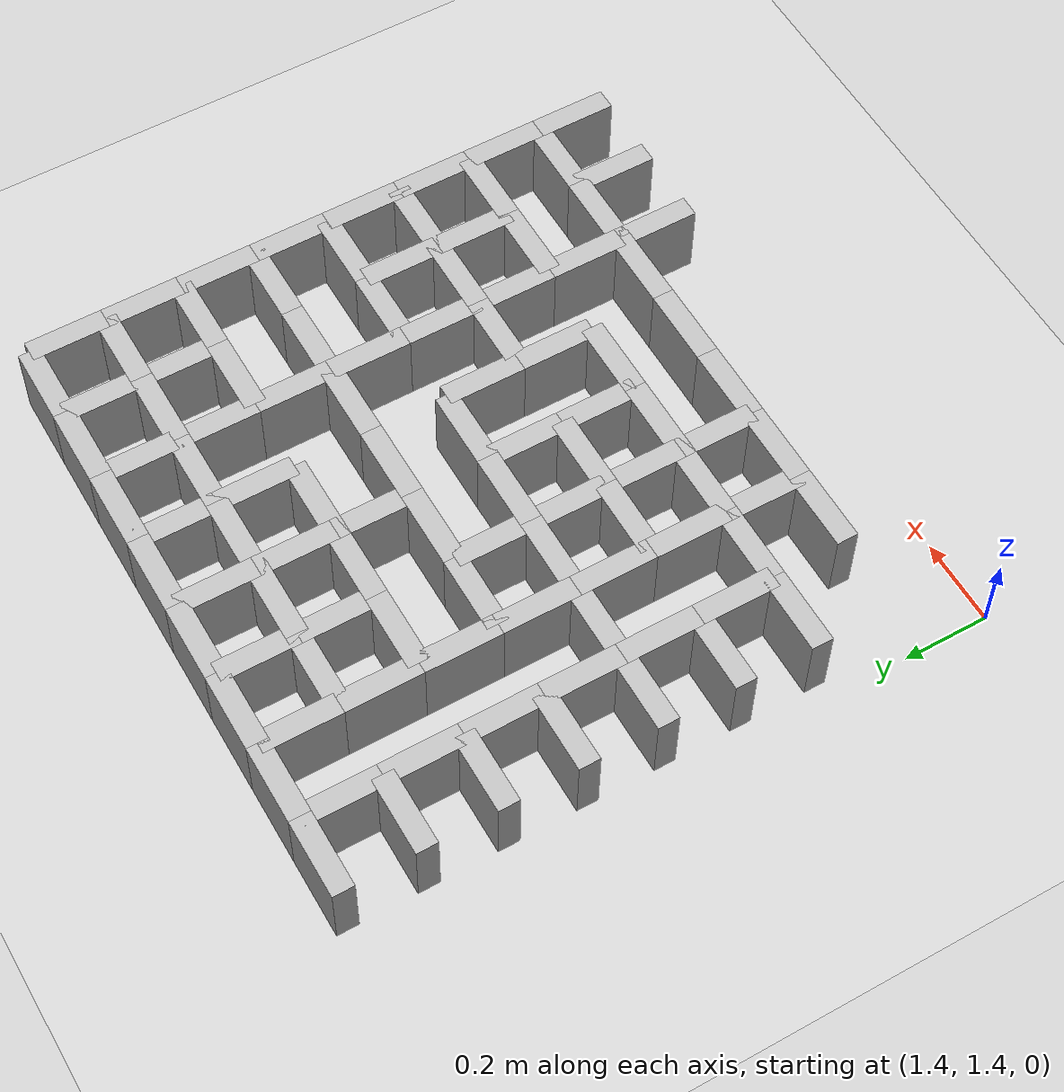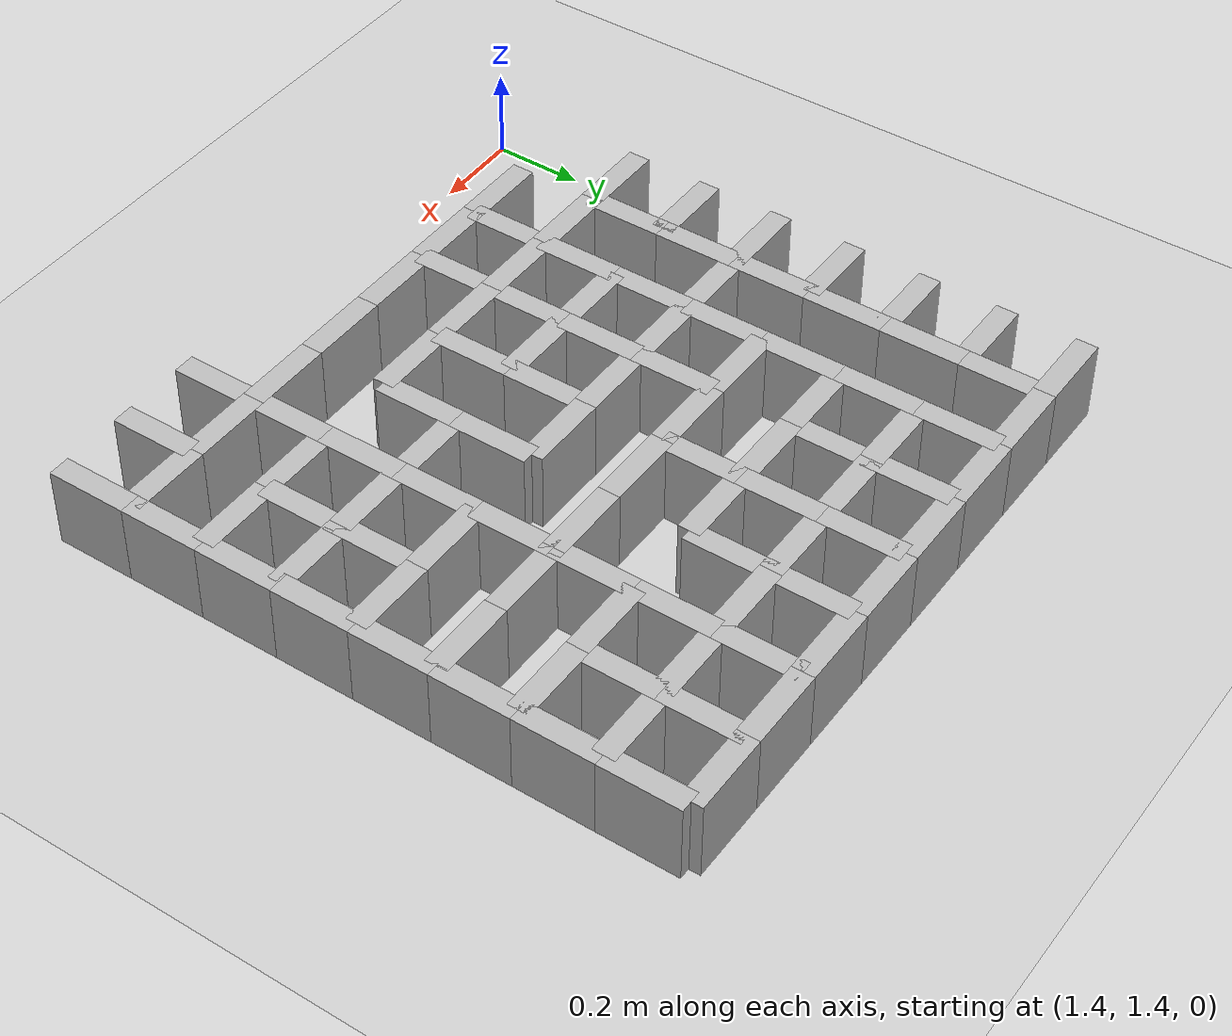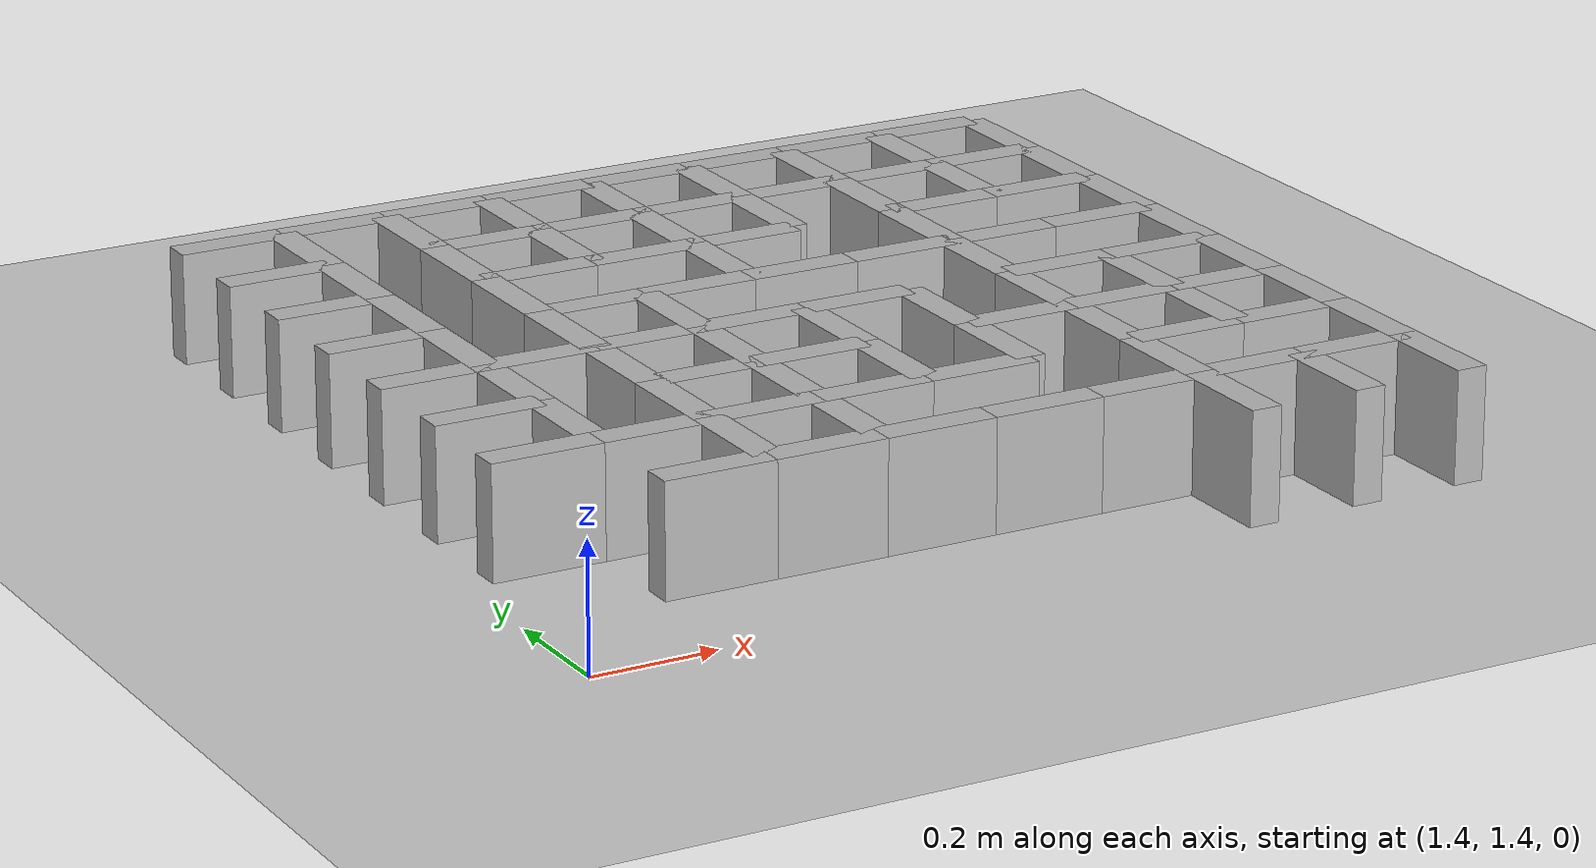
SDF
<sdf version="1.6">
 <world name="default">
  <model name="ground_plane">
   <static>1</static>
   <link name="link">
    <collision name="collision">
     <geometry><plane><normal>0 0 1</normal><size>100 100</size></plane></geometry>
     <surface><friction><ode><mu>100</mu><mu2>50</mu2></ode></friction></surface>
    </collision>
    <visual name="visual">
     <cast_shadows>0</cast_shadows>
     <geometry><plane><normal>0 0 1</normal><size>100 100</size></plane></geometry>
     <material>
      <script><uri>file://media/materials/scripts/gazebo.material</uri><name>Gazebo/Grey</name></script>
     </material>
    </visual>
   </link>
  </model>
  <model name="labyrinth_wall292">
   <pose>2.520000 1.530000 0.09 0 0 1.570796</pose>
   <link name="link">
    <inertial><mass>3.0</mass></inertial>
    <collision name="collision"><geometry><box><size>0.180 0.050 0.180</size></box></geometry></collision>
    <visual name="visual"><geometry><box><size>0.180 0.050 0.180</size></box></geometry></visual>
   </link>
   <static>true</static>
  </model>
  <model name="labyrinth_wall294">
   <pose>2.700000 1.530000 0.09 0 0 1.570796</pose>
   <link name="link">
    <inertial><mass>3.0</mass></inertial>
    <collision name="collision"><geometry><box><size>0.180 0.050 0.180</size></box></geometry></collision>
    <visual name="visual"><geometry><box><size>0.180 0.050 0.180</size></box></geometry></visual>
   </link>
   <static>true</static>
  </model>
  <model name="labyrinth_wall296">
   <pose>2.880000 1.530000 0.09 0 0 1.570796</pose>
   <link name="link">
    <inertial><mass>3.0</mass></inertial>
    <collision name="collision"><geometry><box><size>0.180 0.050 0.180</size></box></geometry></collision>
    <visual name="visual"><geometry><box><size>0.180 0.050 0.180</size></box></geometry></visual>
   </link>
   <static>true</static>
  </model>
  <model name="labyrinth_wall316">
   <pose>1.710000 1.620000 0.09 0 0 0.000000</pose>
   <link name="link">
    <inertial><mass>3.0</mass></inertial>
    <collision name="collision"><geometry><box><size>0.180 0.050 0.180</size></box></geometry></collision>
    <visual name="visual"><geometry><box><size>0.180 0.050 0.180</size></box></geometry></visual>
   </link>
   <static>true</static>
  </model>
  <model name="labyrinth_wall317">
   <pose>1.800000 1.710000 0.09 0 0 1.570796</pose>
   <link name="link">
    <inertial><mass>3.0</mass></inertial>
    <collision name="collision"><geometry><box><size>0.180 0.050 0.180</size></box></geometry></collision>
    <visual name="visual"><geometry><box><size>0.180 0.050 0.180</size></box></geometry></visual>
   </link>
   <static>true</static>
  </model>
  <model name="labyrinth_wall318">
   <pose>1.890000 1.620000 0.09 0 0 0.000000</pose>
   <link name="link">
    <inertial><mass>3.0</mass></inertial>
    <collision name="collision"><geometry><box><size>0.180 0.050 0.180</size></box></geometry></collision>
    <visual name="visual"><geometry><box><size>0.180 0.050 0.180</size></box></geometry></visual>
   </link>
   <static>true</static>
  </model>
  <model name="labyrinth_wall319">
   <pose>1.980000 1.710000 0.09 0 0 1.570796</pose>
   <link name="link">
    <inertial><mass>3.0</mass></inertial>
    <collision name="collision"><geometry><box><size>0.180 0.050 0.180</size></box></geometry></collision>
    <visual name="visual"><geometry><box><size>0.180 0.050 0.180</size></box></geometry></visual>
   </link>
   <static>true</static>
  </model>
  <model name="labyrinth_wall320">
   <pose>2.070000 1.620000 0.09 0 0 0.000000</pose>
   <link name="link">
    <inertial><mass>3.0</mass></inertial>
    <collision name="collision"><geometry><box><size>0.180 0.050 0.180</size></box></geometry></collision>
    <visual name="visual"><geometry><box><size>0.180 0.050 0.180</size></box></geometry></visual>
   </link>
   <static>true</static>
  </model>
  <model name="labyrinth_wall322">
   <pose>2.250000 1.620000 0.09 0 0 0.000000</pose>
   <link name="link">
    <inertial><mass>3.0</mass></inertial>
    <collision name="collision"><geometry><box><size>0.180 0.050 0.180</size></box></geometry></collision>
    <visual name="visual"><geometry><box><size>0.180 0.050 0.180</size></box></geometry></visual>
   </link>
   <static>true</static>
  </model>
  <model name="labyrinth_wall324">
   <pose>2.430000 1.620000 0.09 0 0 0.000000</pose>
   <link name="link">
    <inertial><mass>3.0</mass></inertial>
    <collision name="collision"><geometry><box><size>0.180 0.050 0.180</size></box></geometry></collision>
    <visual name="visual"><geometry><box><size>0.180 0.050 0.180</size></box></geometry></visual>
   </link>
   <static>true</static>
  </model>
  <model name="labyrinth_wall325">
   <pose>2.520000 1.710000 0.09 0 0 1.570796</pose>
   <link name="link">
    <inertial><mass>3.0</mass></inertial>
    <collision name="collision"><geometry><box><size>0.180 0.050 0.180</size></box></geometry></collision>
    <visual name="visual"><geometry><box><size>0.180 0.050 0.180</size></box></geometry></visual>
   </link>
   <static>true</static>
  </model>
  <model name="labyrinth_wall326">
   <pose>2.610000 1.620000 0.09 0 0 0.000000</pose>
   <link name="link">
    <inertial><mass>3.0</mass></inertial>
    <collision name="collision"><geometry><box><size>0.180 0.050 0.180</size></box></geometry></collision>
    <visual name="visual"><geometry><box><size>0.180 0.050 0.180</size></box></geometry></visual>
   </link>
   <static>true</static>
  </model>
  <model name="labyrinth_wall328">
   <pose>2.790000 1.620000 0.09 0 0 0.000000</pose>
   <link name="link">
    <inertial><mass>3.0</mass></inertial>
    <collision name="collision"><geometry><box><size>0.180 0.050 0.180</size></box></geometry></collision>
    <visual name="visual"><geometry><box><size>0.180 0.050 0.180</size></box></geometry></visual>
   </link>
   <static>true</static>
  </model>
  <model name="labyrinth_wall329">
   <pose>2.880000 1.710000 0.09 0 0 1.570796</pose>
   <link name="link">
    <inertial><mass>3.0</mass></inertial>
    <collision name="collision"><geometry><box><size>0.180 0.050 0.180</size></box></geometry></collision>
    <visual name="visual"><geometry><box><size>0.180 0.050 0.180</size></box></geometry></visual>
   </link>
   <static>true</static>
  </model>
  <model name="labyrinth_wall347">
   <pose>1.530000 1.800000 0.09 0 0 0.000000</pose>
   <link name="link">
    <inertial><mass>3.0</mass></inertial>
    <collision name="collision"><geometry><box><size>0.180 0.050 0.180</size></box></geometry></collision>
    <visual name="visual"><geometry><box><size>0.180 0.050 0.180</size></box></geometry></visual>
   </link>
   <static>true</static>
  </model>
  <model name="labyrinth_wall348">
   <pose>1.620000 1.890000 0.09 0 0 1.570796</pose>
   <link name="link">
    <inertial><mass>3.0</mass></inertial>
    <collision name="collision"><geometry><box><size>0.180 0.050 0.180</size></box></geometry></collision>
    <visual name="visual"><geometry><box><size>0.180 0.050 0.180</size></box></geometry></visual>
   </link>
   <static>true</static>
  </model>
  <model name="labyrinth_wall349">
   <pose>1.710000 1.800000 0.09 0 0 0.000000</pose>
   <link name="link">
    <inertial><mass>3.0</mass></inertial>
    <collision name="collision"><geometry><box><size>0.180 0.050 0.180</size></box></geometry></collision>
    <visual name="visual"><geometry><box><size>0.180 0.050 0.180</size></box></geometry></visual>
   </link>
   <static>true</static>
  </model>
  <model name="labyrinth_wall350">
   <pose>1.800000 1.890000 0.09 0 0 1.570796</pose>
   <link name="link">
    <inertial><mass>3.0</mass></inertial>
    <collision name="collision"><geometry><box><size>0.180 0.050 0.180</size></box></geometry></collision>
    <visual name="visual"><geometry><box><size>0.180 0.050 0.180</size></box></geometry></visual>
   </link>
   <static>true</static>
  </model>
  <model name="labyrinth_wall351">
   <pose>1.890000 1.800000 0.09 0 0 0.000000</pose>
   <link name="link">
    <inertial><mass>3.0</mass></inertial>
    <collision name="collision"><geometry><box><size>0.180 0.050 0.180</size></box></geometry></collision>
    <visual name="visual"><geometry><box><size>0.180 0.050 0.180</size></box></geometry></visual>
   </link>
   <static>true</static>
  </model>
  <model name="labyrinth_wall352">
   <pose>1.980000 1.890000 0.09 0 0 1.570796</pose>
   <link name="link">
    <inertial><mass>3.0</mass></inertial>
    <collision name="collision"><geometry><box><size>0.180 0.050 0.180</size></box></geometry></collision>
    <visual name="visual"><geometry><box><size>0.180 0.050 0.180</size></box></geometry></visual>
   </link>
   <static>true</static>
  </model>
  <model name="labyrinth_wall353">
   <pose>2.070000 1.800000 0.09 0 0 0.000000</pose>
   <link name="link">
    <inertial><mass>3.0</mass></inertial>
    <collision name="collision"><geometry><box><size>0.180 0.050 0.180</size></box></geometry></collision>
    <visual name="visual"><geometry><box><size>0.180 0.050 0.180</size></box></geometry></visual>
   </link>
   <static>true</static>
  </model>
  <model name="labyrinth_wall354">
   <pose>2.160000 1.890000 0.09 0 0 1.570796</pose>
   <link name="link">
    <inertial><mass>3.0</mass></inertial>
    <collision name="collision"><geometry><box><size>0.180 0.050 0.180</size></box></geometry></collision>
    <visual name="visual"><geometry><box><size>0.180 0.050 0.180</size></box></geometry></visual>
   </link>
   <static>true</static>
  </model>
  <model name="labyrinth_wall355">
   <pose>2.250000 1.800000 0.09 0 0 0.000000</pose>
   <link name="link">
    <inertial><mass>3.0</mass></inertial>
    <collision name="collision"><geometry><box><size>0.180 0.050 0.180</size></box></geometry></collision>
    <visual name="visual"><geometry><box><size>0.180 0.050 0.180</size></box></geometry></visual>
   </link>
   <static>true</static>
  </model>
  <model name="labyrinth_wall356">
   <pose>2.340000 1.890000 0.09 0 0 1.570796</pose>
   <link name="link">
    <inertial><mass>3.0</mass></inertial>
    <collision name="collision"><geometry><box><size>0.180 0.050 0.180</size></box></geometry></collision>
    <visual name="visual"><geometry><box><size>0.180 0.050 0.180</size></box></geometry></visual>
   </link>
   <static>true</static>
  </model>
  <model name="labyrinth_wall358">
   <pose>2.520000 1.890000 0.09 0 0 1.570796</pose>
   <link name="link">
    <inertial><mass>3.0</mass></inertial>
    <collision name="collision"><geometry><box><size>0.180 0.050 0.180</size></box></geometry></collision>
    <visual name="visual"><geometry><box><size>0.180 0.050 0.180</size></box></geometry></visual>
   </link>
   <static>true</static>
  </model>
  <model name="labyrinth_wall359">
   <pose>2.610000 1.800000 0.09 0 0 0.000000</pose>
   <link name="link">
    <inertial><mass>3.0</mass></inertial>
    <collision name="collision"><geometry><box><size>0.180 0.050 0.180</size></box></geometry></collision>
    <visual name="visual"><geometry><box><size>0.180 0.050 0.180</size></box></geometry></visual>
   </link>
   <static>true</static>
  </model>
  <model name="labyrinth_wall360">
   <pose>2.700000 1.890000 0.09 0 0 1.570796</pose>
   <link name="link">
    <inertial><mass>3.0</mass></inertial>
    <collision name="collision"><geometry><box><size>0.180 0.050 0.180</size></box></geometry></collision>
    <visual name="visual"><geometry><box><size>0.180 0.050 0.180</size></box></geometry></visual>
   </link>
   <static>true</static>
  </model>
  <model name="labyrinth_wall361">
   <pose>2.790000 1.800000 0.09 0 0 0.000000</pose>
   <link name="link">
    <inertial><mass>3.0</mass></inertial>
    <collision name="collision"><geometry><box><size>0.180 0.050 0.180</size></box></geometry></collision>
    <visual name="visual"><geometry><box><size>0.180 0.050 0.180</size></box></geometry></visual>
   </link>
   <static>true</static>
  </model>
  <model name="labyrinth_wall362">
   <pose>2.880000 1.890000 0.09 0 0 1.570796</pose>
   <link name="link">
    <inertial><mass>3.0</mass></inertial>
    <collision name="collision"><geometry><box><size>0.180 0.050 0.180</size></box></geometry></collision>
    <visual name="visual"><geometry><box><size>0.180 0.050 0.180</size></box></geometry></visual>
   </link>
   <static>true</static>
  </model>
  <model name="labyrinth_wall380">
   <pose>1.530000 1.980000 0.09 0 0 0.000000</pose>
   <link name="link">
    <inertial><mass>3.0</mass></inertial>
    <collision name="collision"><geometry><box><size>0.180 0.050 0.180</size></box></geometry></collision>
    <visual name="visual"><geometry><box><size>0.180 0.050 0.180</size></box></geometry></visual>
   </link>
   <static>true</static>
  </model>
  <model name="labyrinth_wall381">
   <pose>1.620000 2.070000 0.09 0 0 1.570796</pose>
   <link name="link">
    <inertial><mass>3.0</mass></inertial>
    <collision name="collision"><geometry><box><size>0.180 0.050 0.180</size></box></geometry></collision>
    <visual name="visual"><geometry><box><size>0.180 0.050 0.180</size></box></geometry></visual>
   </link>
   <static>true</static>
  </model>
  <model name="labyrinth_wall383">
   <pose>1.800000 2.070000 0.09 0 0 1.570796</pose>
   <link name="link">
    <inertial><mass>3.0</mass></inertial>
    <collision name="collision"><geometry><box><size>0.180 0.050 0.180</size></box></geometry></collision>
    <visual name="visual"><geometry><box><size>0.180 0.050 0.180</size></box></geometry></visual>
   </link>
   <static>true</static>
  </model>
  <model name="labyrinth_wall384">
   <pose>1.890000 1.980000 0.09 0 0 0.000000</pose>
   <link name="link">
    <inertial><mass>3.0</mass></inertial>
    <collision name="collision"><geometry><box><size>0.180 0.050 0.180</size></box></geometry></collision>
    <visual name="visual"><geometry><box><size>0.180 0.050 0.180</size></box></geometry></visual>
   </link>
   <static>true</static>
  </model>
  <model name="labyrinth_wall385">
   <pose>1.980000 2.070000 0.09 0 0 1.570796</pose>
   <link name="link">
    <inertial><mass>3.0</mass></inertial>
    <collision name="collision"><geometry><box><size>0.180 0.050 0.180</size></box></geometry></collision>
    <visual name="visual"><geometry><box><size>0.180 0.050 0.180</size></box></geometry></visual>
   </link>
   <static>true</static>
  </model>
  <model name="labyrinth_wall386">
   <pose>2.070000 1.980000 0.09 0 0 0.000000</pose>
   <link name="link">
    <inertial><mass>3.0</mass></inertial>
    <collision name="collision"><geometry><box><size>0.180 0.050 0.180</size></box></geometry></collision>
    <visual name="visual"><geometry><box><size>0.180 0.050 0.180</size></box></geometry></visual>
   </link>
   <static>true</static>
  </model>
  <model name="labyrinth_wall387">
   <pose>2.160000 2.070000 0.09 0 0 1.570796</pose>
   <link name="link">
    <inertial><mass>3.0</mass></inertial>
    <collision name="collision"><geometry><box><size>0.180 0.050 0.180</size></box></geometry></collision>
    <visual name="visual"><geometry><box><size>0.180 0.050 0.180</size></box></geometry></visual>
   </link>
   <static>true</static>
  </model>
  <model name="labyrinth_wall389">
   <pose>2.340000 2.070000 0.09 0 0 1.570796</pose>
   <link name="link">
    <inertial><mass>3.0</mass></inertial>
    <collision name="collision"><geometry><box><size>0.180 0.050 0.180</size></box></geometry></collision>
    <visual name="visual"><geometry><box><size>0.180 0.050 0.180</size></box></geometry></visual>
   </link>
   <static>true</static>
  </model>
  <model name="labyrinth_wall390">
   <pose>2.430000 1.980000 0.09 0 0 0.000000</pose>
   <link name="link">
    <inertial><mass>3.0</mass></inertial>
    <collision name="collision"><geometry><box><size>0.180 0.050 0.180</size></box></geometry></collision>
    <visual name="visual"><geometry><box><size>0.180 0.050 0.180</size></box></geometry></visual>
   </link>
   <static>true</static>
  </model>
  <model name="labyrinth_wall391">
   <pose>2.520000 2.070000 0.09 0 0 1.570796</pose>
   <link name="link">
    <inertial><mass>3.0</mass></inertial>
    <collision name="collision"><geometry><box><size>0.180 0.050 0.180</size></box></geometry></collision>
    <visual name="visual"><geometry><box><size>0.180 0.050 0.180</size></box></geometry></visual>
   </link>
   <static>true</static>
  </model>
  <model name="labyrinth_wall392">
   <pose>2.610000 1.980000 0.09 0 0 0.000000</pose>
   <link name="link">
    <inertial><mass>3.0</mass></inertial>
    <collision name="collision"><geometry><box><size>0.180 0.050 0.180</size></box></geometry></collision>
    <visual name="visual"><geometry><box><size>0.180 0.050 0.180</size></box></geometry></visual>
   </link>
   <static>true</static>
  </model>
  <model name="labyrinth_wall393">
   <pose>2.700000 2.070000 0.09 0 0 1.570796</pose>
   <link name="link">
    <inertial><mass>3.0</mass></inertial>
    <collision name="collision"><geometry><box><size>0.180 0.050 0.180</size></box></geometry></collision>
    <visual name="visual"><geometry><box><size>0.180 0.050 0.180</size></box></geometry></visual>
   </link>
   <static>true</static>
  </model>
  <model name="labyrinth_wall394">
   <pose>2.790000 1.980000 0.09 0 0 0.000000</pose>
   <link name="link">
    <inertial><mass>3.0</mass></inertial>
    <collision name="collision"><geometry><box><size>0.180 0.050 0.180</size></box></geometry></collision>
    <visual name="visual"><geometry><box><size>0.180 0.050 0.180</size></box></geometry></visual>
   </link>
   <static>true</static>
  </model>
  <model name="labyrinth_wall395">
   <pose>2.880000 2.070000 0.09 0 0 1.570796</pose>
   <link name="link">
    <inertial><mass>3.0</mass></inertial>
    <collision name="collision"><geometry><box><size>0.180 0.050 0.180</size></box></geometry></collision>
    <visual name="visual"><geometry><box><size>0.180 0.050 0.180</size></box></geometry></visual>
   </link>
   <static>true</static>
  </model>
  <model name="labyrinth_wall413">
   <pose>1.530000 2.160000 0.09 0 0 0.000000</pose>
   <link name="link">
    <inertial><mass>3.0</mass></inertial>
    <collision name="collision"><geometry><box><size>0.180 0.050 0.180</size></box></geometry></collision>
    <visual name="visual"><geometry><box><size>0.180 0.050 0.180</size></box></geometry></visual>
   </link>
   <static>true</static>
  </model>
  <model name="labyrinth_wall414">
   <pose>1.620000 2.250000 0.09 0 0 1.570796</pose>
   <link name="link">
    <inertial><mass>3.0</mass></inertial>
    <collision name="collision"><geometry><box><size>0.180 0.050 0.180</size></box></geometry></collision>
    <visual name="visual"><geometry><box><size>0.180 0.050 0.180</size></box></geometry></visual>
   </link>
   <static>true</static>
  </model>
  <model name="labyrinth_wall415">
   <pose>1.710000 2.160000 0.09 0 0 0.000000</pose>
   <link name="link">
    <inertial><mass>3.0</mass></inertial>
    <collision name="collision"><geometry><box><size>0.180 0.050 0.180</size></box></geometry></collision>
    <visual name="visual"><geometry><box><size>0.180 0.050 0.180</size></box></geometry></visual>
   </link>
   <static>true</static>
  </model>
  <model name="labyrinth_wall416">
   <pose>1.800000 2.250000 0.09 0 0 1.570796</pose>
   <link name="link">
    <inertial><mass>3.0</mass></inertial>
    <collision name="collision"><geometry><box><size>0.180 0.050 0.180</size></box></geometry></collision>
    <visual name="visual"><geometry><box><size>0.180 0.050 0.180</size></box></geometry></visual>
   </link>
   <static>true</static>
  </model>
  <model name="labyrinth_wall417">
   <pose>1.890000 2.160000 0.09 0 0 0.000000</pose>
   <link name="link">
    <inertial><mass>3.0</mass></inertial>
    <collision name="collision"><geometry><box><size>0.180 0.050 0.180</size></box></geometry></collision>
    <visual name="visual"><geometry><box><size>0.180 0.050 0.180</size></box></geometry></visual>
   </link>
   <static>true</static>
  </model>
  <model name="labyrinth_wall418">
   <pose>1.980000 2.250000 0.09 0 0 1.570796</pose>
   <link name="link">
    <inertial><mass>3.0</mass></inertial>
    <collision name="collision"><geometry><box><size>0.180 0.050 0.180</size></box></geometry></collision>
    <visual name="visual"><geometry><box><size>0.180 0.050 0.180</size></box></geometry></visual>
   </link>
   <static>true</static>
  </model>
  <model name="labyrinth_wall419">
   <pose>2.070000 2.160000 0.09 0 0 0.000000</pose>
   <link name="link">
    <inertial><mass>3.0</mass></inertial>
    <collision name="collision"><geometry><box><size>0.180 0.050 0.180</size></box></geometry></collision>
    <visual name="visual"><geometry><box><size>0.180 0.050 0.180</size></box></geometry></visual>
   </link>
   <static>true</static>
  </model>
  <model name="labyrinth_wall421">
   <pose>2.250000 2.160000 0.09 0 0 0.000000</pose>
   <link name="link">
    <inertial><mass>3.0</mass></inertial>
    <collision name="collision"><geometry><box><size>0.180 0.050 0.180</size></box></geometry></collision>
    <visual name="visual"><geometry><box><size>0.180 0.050 0.180</size></box></geometry></visual>
   </link>
   <static>true</static>
  </model>
  <model name="labyrinth_wall424">
   <pose>2.520000 2.250000 0.09 0 0 1.570796</pose>
   <link name="link">
    <inertial><mass>3.0</mass></inertial>
    <collision name="collision"><geometry><box><size>0.180 0.050 0.180</size></box></geometry></collision>
    <visual name="visual"><geometry><box><size>0.180 0.050 0.180</size></box></geometry></visual>
   </link>
   <static>true</static>
  </model>
  <model name="labyrinth_wall425">
   <pose>2.610000 2.160000 0.09 0 0 0.000000</pose>
   <link name="link">
    <inertial><mass>3.0</mass></inertial>
    <collision name="collision"><geometry><box><size>0.180 0.050 0.180</size></box></geometry></collision>
    <visual name="visual"><geometry><box><size>0.180 0.050 0.180</size></box></geometry></visual>
   </link>
   <static>true</static>
  </model>
  <model name="labyrinth_wall427">
   <pose>2.790000 2.160000 0.09 0 0 0.000000</pose>
   <link name="link">
    <inertial><mass>3.0</mass></inertial>
    <collision name="collision"><geometry><box><size>0.180 0.050 0.180</size></box></geometry></collision>
    <visual name="visual"><geometry><box><size>0.180 0.050 0.180</size></box></geometry></visual>
   </link>
   <static>true</static>
  </model>
  <model name="labyrinth_wall428">
   <pose>2.880000 2.250000 0.09 0 0 1.570796</pose>
   <link name="link">
    <inertial><mass>3.0</mass></inertial>
    <collision name="collision"><geometry><box><size>0.180 0.050 0.180</size></box></geometry></collision>
    <visual name="visual"><geometry><box><size>0.180 0.050 0.180</size></box></geometry></visual>
   </link>
   <static>true</static>
  </model>
  <model name="labyrinth_wall446">
   <pose>1.530000 2.340000 0.09 0 0 0.000000</pose>
   <link name="link">
    <inertial><mass>3.0</mass></inertial>
    <collision name="collision"><geometry><box><size>0.180 0.050 0.180</size></box></geometry></collision>
    <visual name="visual"><geometry><box><size>0.180 0.050 0.180</size></box></geometry></visual>
   </link>
   <static>true</static>
  </model>
  <model name="labyrinth_wall447">
   <pose>1.620000 2.430000 0.09 0 0 1.570796</pose>
   <link name="link">
    <inertial><mass>3.0</mass></inertial>
    <collision name="collision"><geometry><box><size>0.180 0.050 0.180</size></box></geometry></collision>
    <visual name="visual"><geometry><box><size>0.180 0.050 0.180</size></box></geometry></visual>
   </link>
   <static>true</static>
  </model>
  <model name="labyrinth_wall449">
   <pose>1.800000 2.430000 0.09 0 0 1.570796</pose>
   <link name="link">
    <inertial><mass>3.0</mass></inertial>
    <collision name="collision"><geometry><box><size>0.180 0.050 0.180</size></box></geometry></collision>
    <visual name="visual"><geometry><box><size>0.180 0.050 0.180</size></box></geometry></visual>
   </link>
   <static>true</static>
  </model>
  <model name="labyrinth_wall450">
   <pose>1.890000 2.340000 0.09 0 0 0.000000</pose>
   <link name="link">
    <inertial><mass>3.0</mass></inertial>
    <collision name="collision"><geometry><box><size>0.180 0.050 0.180</size></box></geometry></collision>
    <visual name="visual"><geometry><box><size>0.180 0.050 0.180</size></box></geometry></visual>
   </link>
   <static>true</static>
  </model>
  <model name="labyrinth_wall452">
   <pose>2.070000 2.340000 0.09 0 0 0.000000</pose>
   <link name="link">
    <inertial><mass>3.0</mass></inertial>
    <collision name="collision"><geometry><box><size>0.180 0.050 0.180</size></box></geometry></collision>
    <visual name="visual"><geometry><box><size>0.180 0.050 0.180</size></box></geometry></visual>
   </link>
   <static>true</static>
  </model>
  <model name="labyrinth_wall453">
   <pose>2.160000 2.430000 0.09 0 0 1.570796</pose>
   <link name="link">
    <inertial><mass>3.0</mass></inertial>
    <collision name="collision"><geometry><box><size>0.180 0.050 0.180</size></box></geometry></collision>
    <visual name="visual"><geometry><box><size>0.180 0.050 0.180</size></box></geometry></visual>
   </link>
   <static>true</static>
  </model>
  <model name="labyrinth_wall454">
   <pose>2.250000 2.340000 0.09 0 0 0.000000</pose>
   <link name="link">
    <inertial><mass>3.0</mass></inertial>
    <collision name="collision"><geometry><box><size>0.180 0.050 0.180</size></box></geometry></collision>
    <visual name="visual"><geometry><box><size>0.180 0.050 0.180</size></box></geometry></visual>
   </link>
   <static>true</static>
  </model>
  <model name="labyrinth_wall456">
   <pose>2.430000 2.340000 0.09 0 0 0.000000</pose>
   <link name="link">
    <inertial><mass>3.0</mass></inertial>
    <collision name="collision"><geometry><box><size>0.180 0.050 0.180</size></box></geometry></collision>
    <visual name="visual"><geometry><box><size>0.180 0.050 0.180</size></box></geometry></visual>
   </link>
   <static>true</static>
  </model>
  <model name="labyrinth_wall457">
   <pose>2.520000 2.430000 0.09 0 0 1.570796</pose>
   <link name="link">
    <inertial><mass>3.0</mass></inertial>
    <collision name="collision"><geometry><box><size>0.180 0.050 0.180</size></box></geometry></collision>
    <visual name="visual"><geometry><box><size>0.180 0.050 0.180</size></box></geometry></visual>
   </link>
   <static>true</static>
  </model>
  <model name="labyrinth_wall458">
   <pose>2.610000 2.340000 0.09 0 0 0.000000</pose>
   <link name="link">
    <inertial><mass>3.0</mass></inertial>
    <collision name="collision"><geometry><box><size>0.180 0.050 0.180</size></box></geometry></collision>
    <visual name="visual"><geometry><box><size>0.180 0.050 0.180</size></box></geometry></visual>
   </link>
   <static>true</static>
  </model>
  <model name="labyrinth_wall460">
   <pose>2.790000 2.340000 0.09 0 0 0.000000</pose>
   <link name="link">
    <inertial><mass>3.0</mass></inertial>
    <collision name="collision"><geometry><box><size>0.180 0.050 0.180</size></box></geometry></collision>
    <visual name="visual"><geometry><box><size>0.180 0.050 0.180</size></box></geometry></visual>
   </link>
   <static>true</static>
  </model>
  <model name="labyrinth_wall461">
   <pose>2.880000 2.430000 0.09 0 0 1.570796</pose>
   <link name="link">
    <inertial><mass>3.0</mass></inertial>
    <collision name="collision"><geometry><box><size>0.180 0.050 0.180</size></box></geometry></collision>
    <visual name="visual"><geometry><box><size>0.180 0.050 0.180</size></box></geometry></visual>
   </link>
   <static>true</static>
  </model>
  <model name="labyrinth_wall479">
   <pose>1.530000 2.520000 0.09 0 0 0.000000</pose>
   <link name="link">
    <inertial><mass>3.0</mass></inertial>
    <collision name="collision"><geometry><box><size>0.180 0.050 0.180</size></box></geometry></collision>
    <visual name="visual"><geometry><box><size>0.180 0.050 0.180</size></box></geometry></visual>
   </link>
   <static>true</static>
  </model>
  <model name="labyrinth_wall480">
   <pose>1.620000 2.610000 0.09 0 0 1.570796</pose>
   <link name="link">
    <inertial><mass>3.0</mass></inertial>
    <collision name="collision"><geometry><box><size>0.180 0.050 0.180</size></box></geometry></collision>
    <visual name="visual"><geometry><box><size>0.180 0.050 0.180</size></box></geometry></visual>
   </link>
   <static>true</static>
  </model>
  <model name="labyrinth_wall482">
   <pose>1.800000 2.610000 0.09 0 0 1.570796</pose>
   <link name="link">
    <inertial><mass>3.0</mass></inertial>
    <collision name="collision"><geometry><box><size>0.180 0.050 0.180</size></box></geometry></collision>
    <visual name="visual"><geometry><box><size>0.180 0.050 0.180</size></box></geometry></visual>
   </link>
   <static>true</static>
  </model>
  <model name="labyrinth_wall483">
   <pose>1.890000 2.520000 0.09 0 0 0.000000</pose>
   <link name="link">
    <inertial><mass>3.0</mass></inertial>
    <collision name="collision"><geometry><box><size>0.180 0.050 0.180</size></box></geometry></collision>
    <visual name="visual"><geometry><box><size>0.180 0.050 0.180</size></box></geometry></visual>
   </link>
   <static>true</static>
  </model>
  <model name="labyrinth_wall484">
   <pose>1.980000 2.610000 0.09 0 0 1.570796</pose>
   <link name="link">
    <inertial><mass>3.0</mass></inertial>
    <collision name="collision"><geometry><box><size>0.180 0.050 0.180</size></box></geometry></collision>
    <visual name="visual"><geometry><box><size>0.180 0.050 0.180</size></box></geometry></visual>
   </link>
   <static>true</static>
  </model>
  <model name="labyrinth_wall485">
   <pose>2.070000 2.520000 0.09 0 0 0.000000</pose>
   <link name="link">
    <inertial><mass>3.0</mass></inertial>
    <collision name="collision"><geometry><box><size>0.180 0.050 0.180</size></box></geometry></collision>
    <visual name="visual"><geometry><box><size>0.180 0.050 0.180</size></box></geometry></visual>
   </link>
   <static>true</static>
  </model>
  <model name="labyrinth_wall486">
   <pose>2.160000 2.610000 0.09 0 0 1.570796</pose>
   <link name="link">
    <inertial><mass>3.0</mass></inertial>
    <collision name="collision"><geometry><box><size>0.180 0.050 0.180</size></box></geometry></collision>
    <visual name="visual"><geometry><box><size>0.180 0.050 0.180</size></box></geometry></visual>
   </link>
   <static>true</static>
  </model>
  <model name="labyrinth_wall487">
   <pose>2.250000 2.520000 0.09 0 0 0.000000</pose>
   <link name="link">
    <inertial><mass>3.0</mass></inertial>
    <collision name="collision"><geometry><box><size>0.180 0.050 0.180</size></box></geometry></collision>
    <visual name="visual"><geometry><box><size>0.180 0.050 0.180</size></box></geometry></visual>
   </link>
   <static>true</static>
  </model>
  <model name="labyrinth_wall488">
   <pose>2.340000 2.610000 0.09 0 0 1.570796</pose>
   <link name="link">
    <inertial><mass>3.0</mass></inertial>
    <collision name="collision"><geometry><box><size>0.180 0.050 0.180</size></box></geometry></collision>
    <visual name="visual"><geometry><box><size>0.180 0.050 0.180</size></box></geometry></visual>
   </link>
   <static>true</static>
  </model>
  <model name="labyrinth_wall490">
   <pose>2.520000 2.610000 0.09 0 0 1.570796</pose>
   <link name="link">
    <inertial><mass>3.0</mass></inertial>
    <collision name="collision"><geometry><box><size>0.180 0.050 0.180</size></box></geometry></collision>
    <visual name="visual"><geometry><box><size>0.180 0.050 0.180</size></box></geometry></visual>
   </link>
   <static>true</static>
  </model>
  <model name="labyrinth_wall491">
   <pose>2.610000 2.520000 0.09 0 0 0.000000</pose>
   <link name="link">
    <inertial><mass>3.0</mass></inertial>
    <collision name="collision"><geometry><box><size>0.180 0.050 0.180</size></box></geometry></collision>
    <visual name="visual"><geometry><box><size>0.180 0.050 0.180</size></box></geometry></visual>
   </link>
   <static>true</static>
  </model>
  <model name="labyrinth_wall492">
   <pose>2.700000 2.610000 0.09 0 0 1.570796</pose>
   <link name="link">
    <inertial><mass>3.0</mass></inertial>
    <collision name="collision"><geometry><box><size>0.180 0.050 0.180</size></box></geometry></collision>
    <visual name="visual"><geometry><box><size>0.180 0.050 0.180</size></box></geometry></visual>
   </link>
   <static>true</static>
  </model>
  <model name="labyrinth_wall493">
   <pose>2.790000 2.520000 0.09 0 0 0.000000</pose>
   <link name="link">
    <inertial><mass>3.0</mass></inertial>
    <collision name="collision"><geometry><box><size>0.180 0.050 0.180</size></box></geometry></collision>
    <visual name="visual"><geometry><box><size>0.180 0.050 0.180</size></box></geometry></visual>
   </link>
   <static>true</static>
  </model>
  <model name="labyrinth_wall494">
   <pose>2.880000 2.610000 0.09 0 0 1.570796</pose>
   <link name="link">
    <inertial><mass>3.0</mass></inertial>
    <collision name="collision"><geometry><box><size>0.180 0.050 0.180</size></box></geometry></collision>
    <visual name="visual"><geometry><box><size>0.180 0.050 0.180</size></box></geometry></visual>
   </link>
   <static>true</static>
  </model>
  <model name="labyrinth_wall520">
   <pose>1.530000 2.700000 0.09 0 0 0.000000</pose>
   <link name="link">
    <inertial><mass>3.0</mass></inertial>
    <collision name="collision"><geometry><box><size>0.180 0.050 0.180</size></box></geometry></collision>
    <visual name="visual"><geometry><box><size>0.180 0.050 0.180</size></box></geometry></visual>
   </link>
   <static>true</static>
  </model>
  <model name="labyrinth_wall521">
   <pose>1.620000 2.790000 0.09 0 0 1.570796</pose>
   <link name="link">
    <inertial><mass>3.0</mass></inertial>
    <collision name="collision"><geometry><box><size>0.180 0.050 0.180</size></box></geometry></collision>
    <visual name="visual"><geometry><box><size>0.180 0.050 0.180</size></box></geometry></visual>
   </link>
   <static>true</static>
  </model>
  <model name="labyrinth_wall522">
   <pose>1.530000 2.880000 0.09 0 0 0.000000</pose>
   <link name="link">
    <inertial><mass>3.0</mass></inertial>
    <collision name="collision"><geometry><box><size>0.180 0.050 0.180</size></box></geometry></collision>
    <visual name="visual"><geometry><box><size>0.180 0.050 0.180</size></box></geometry></visual>
   </link>
   <static>true</static>
  </model>
  <model name="labyrinth_wall524">
   <pose>1.800000 2.790000 0.09 0 0 1.570796</pose>
   <link name="link">
    <inertial><mass>3.0</mass></inertial>
    <collision name="collision"><geometry><box><size>0.180 0.050 0.180</size></box></geometry></collision>
    <visual name="visual"><geometry><box><size>0.180 0.050 0.180</size></box></geometry></visual>
   </link>
   <static>true</static>
  </model>
  <model name="labyrinth_wall525">
   <pose>1.710000 2.880000 0.09 0 0 0.000000</pose>
   <link name="link">
    <inertial><mass>3.0</mass></inertial>
    <collision name="collision"><geometry><box><size>0.180 0.050 0.180</size></box></geometry></collision>
    <visual name="visual"><geometry><box><size>0.180 0.050 0.180</size></box></geometry></visual>
   </link>
   <static>true</static>
  </model>
  <model name="labyrinth_wall526">
   <pose>1.890000 2.700000 0.09 0 0 0.000000</pose>
   <link name="link">
    <inertial><mass>3.0</mass></inertial>
    <collision name="collision"><geometry><box><size>0.180 0.050 0.180</size></box></geometry></collision>
    <visual name="visual"><geometry><box><size>0.180 0.050 0.180</size></box></geometry></visual>
   </link>
   <static>true</static>
  </model>
  <model name="labyrinth_wall527">
   <pose>1.980000 2.790000 0.09 0 0 1.570796</pose>
   <link name="link">
    <inertial><mass>3.0</mass></inertial>
    <collision name="collision"><geometry><box><size>0.180 0.050 0.180</size></box></geometry></collision>
    <visual name="visual"><geometry><box><size>0.180 0.050 0.180</size></box></geometry></visual>
   </link>
   <static>true</static>
  </model>
  <model name="labyrinth_wall528">
   <pose>1.890000 2.880000 0.09 0 0 0.000000</pose>
   <link name="link">
    <inertial><mass>3.0</mass></inertial>
    <collision name="collision"><geometry><box><size>0.180 0.050 0.180</size></box></geometry></collision>
    <visual name="visual"><geometry><box><size>0.180 0.050 0.180</size></box></geometry></visual>
   </link>
   <static>true</static>
  </model>
  <model name="labyrinth_wall529">
   <pose>2.070000 2.700000 0.09 0 0 0.000000</pose>
   <link name="link">
    <inertial><mass>3.0</mass></inertial>
    <collision name="collision"><geometry><box><size>0.180 0.050 0.180</size></box></geometry></collision>
    <visual name="visual"><geometry><box><size>0.180 0.050 0.180</size></box></geometry></visual>
   </link>
   <static>true</static>
  </model>
  <model name="labyrinth_wall530">
   <pose>2.160000 2.790000 0.09 0 0 1.570796</pose>
   <link name="link">
    <inertial><mass>3.0</mass></inertial>
    <collision name="collision"><geometry><box><size>0.180 0.050 0.180</size></box></geometry></collision>
    <visual name="visual"><geometry><box><size>0.180 0.050 0.180</size></box></geometry></visual>
   </link>
   <static>true</static>
  </model>
  <model name="labyrinth_wall531">
   <pose>2.070000 2.880000 0.09 0 0 0.000000</pose>
   <link name="link">
    <inertial><mass>3.0</mass></inertial>
    <collision name="collision"><geometry><box><size>0.180 0.050 0.180</size></box></geometry></collision>
    <visual name="visual"><geometry><box><size>0.180 0.050 0.180</size></box></geometry></visual>
   </link>
   <static>true</static>
  </model>
  <model name="labyrinth_wall532">
   <pose>2.250000 2.700000 0.09 0 0 0.000000</pose>
   <link name="link">
    <inertial><mass>3.0</mass></inertial>
    <collision name="collision"><geometry><box><size>0.180 0.050 0.180</size></box></geometry></collision>
    <visual name="visual"><geometry><box><size>0.180 0.050 0.180</size></box></geometry></visual>
   </link>
   <static>true</static>
  </model>
  <model name="labyrinth_wall533">
   <pose>2.340000 2.790000 0.09 0 0 1.570796</pose>
   <link name="link">
    <inertial><mass>3.0</mass></inertial>
    <collision name="collision"><geometry><box><size>0.180 0.050 0.180</size></box></geometry></collision>
    <visual name="visual"><geometry><box><size>0.180 0.050 0.180</size></box></geometry></visual>
   </link>
   <static>true</static>
  </model>
  <model name="labyrinth_wall534">
   <pose>2.250000 2.880000 0.09 0 0 0.000000</pose>
   <link name="link">
    <inertial><mass>3.0</mass></inertial>
    <collision name="collision"><geometry><box><size>0.180 0.050 0.180</size></box></geometry></collision>
    <visual name="visual"><geometry><box><size>0.180 0.050 0.180</size></box></geometry></visual>
   </link>
   <static>true</static>
  </model>
  <model name="labyrinth_wall535">
   <pose>2.430000 2.700000 0.09 0 0 0.000000</pose>
   <link name="link">
    <inertial><mass>3.0</mass></inertial>
    <collision name="collision"><geometry><box><size>0.180 0.050 0.180</size></box></geometry></collision>
    <visual name="visual"><geometry><box><size>0.180 0.050 0.180</size></box></geometry></visual>
   </link>
   <static>true</static>
  </model>
  <model name="labyrinth_wall536">
   <pose>2.520000 2.790000 0.09 0 0 1.570796</pose>
   <link name="link">
    <inertial><mass>3.0</mass></inertial>
    <collision name="collision"><geometry><box><size>0.180 0.050 0.180</size></box></geometry></collision>
    <visual name="visual"><geometry><box><size>0.180 0.050 0.180</size></box></geometry></visual>
   </link>
   <static>true</static>
  </model>
  <model name="labyrinth_wall537">
   <pose>2.430000 2.880000 0.09 0 0 0.000000</pose>
   <link name="link">
    <inertial><mass>3.0</mass></inertial>
    <collision name="collision"><geometry><box><size>0.180 0.050 0.180</size></box></geometry></collision>
    <visual name="visual"><geometry><box><size>0.180 0.050 0.180</size></box></geometry></visual>
   </link>
   <static>true</static>
  </model>
  <model name="labyrinth_wall538">
   <pose>2.610000 2.700000 0.09 0 0 0.000000</pose>
   <link name="link">
    <inertial><mass>3.0</mass></inertial>
    <collision name="collision"><geometry><box><size>0.180 0.050 0.180</size></box></geometry></collision>
    <visual name="visual"><geometry><box><size>0.180 0.050 0.180</size></box></geometry></visual>
   </link>
   <static>true</static>
  </model>
  <model name="labyrinth_wall539">
   <pose>2.700000 2.790000 0.09 0 0 1.570796</pose>
   <link name="link">
    <inertial><mass>3.0</mass></inertial>
    <collision name="collision"><geometry><box><size>0.180 0.050 0.180</size></box></geometry></collision>
    <visual name="visual"><geometry><box><size>0.180 0.050 0.180</size></box></geometry></visual>
   </link>
   <static>true</static>
  </model>
  <model name="labyrinth_wall540">
   <pose>2.610000 2.880000 0.09 0 0 0.000000</pose>
   <link name="link">
    <inertial><mass>3.0</mass></inertial>
    <collision name="collision"><geometry><box><size>0.180 0.050 0.180</size></box></geometry></collision>
    <visual name="visual"><geometry><box><size>0.180 0.050 0.180</size></box></geometry></visual>
   </link>
   <static>true</static>
  </model>
  <model name="labyrinth_wall541">
   <pose>2.790000 2.700000 0.09 0 0 0.000000</pose>
   <link name="link">
    <inertial><mass>3.0</mass></inertial>
    <collision name="collision"><geometry><box><size>0.180 0.050 0.180</size></box></geometry></collision>
    <visual name="visual"><geometry><box><size>0.180 0.050 0.180</size></box></geometry></visual>
   </link>
   <static>true</static>
  </model>
  <model name="labyrinth_wall542">
   <pose>2.880000 2.790000 0.09 0 0 1.570796</pose>
   <link name="link">
    <inertial><mass>3.0</mass></inertial>
    <collision name="collision"><geometry><box><size>0.180 0.050 0.180</size></box></geometry></collision>
    <visual name="visual"><geometry><box><size>0.180 0.050 0.180</size></box></geometry></visual>
   </link>
   <static>true</static>
  </model>
  <model name="labyrinth_wall543">
   <pose>2.790000 2.880000 0.09 0 0 0.000000</pose>
   <link name="link">
    <inertial><mass>3.0</mass></inertial>
    <collision name="collision"><geometry><box><size>0.180 0.050 0.180</size></box></geometry></collision>
    <visual name="visual"><geometry><box><size>0.180 0.050 0.180</size></box></geometry></visual>
   </link>
   <static>true</static>
  </model>
 </world>
</sdf>
